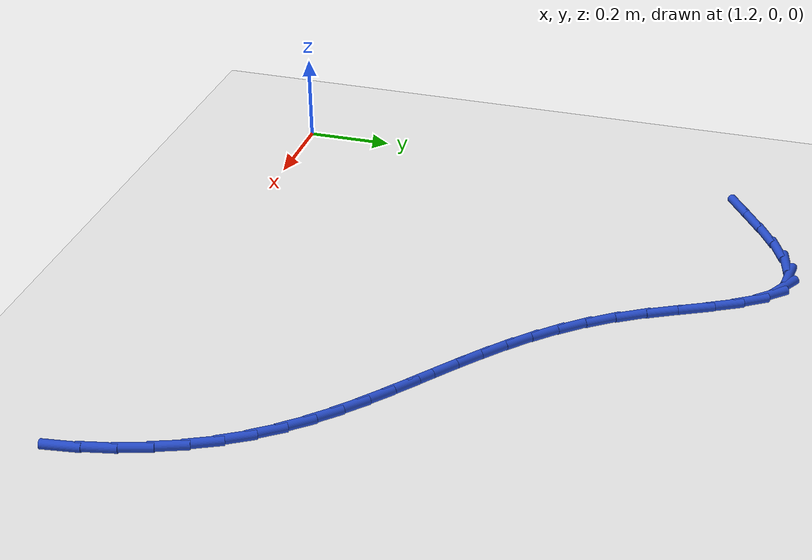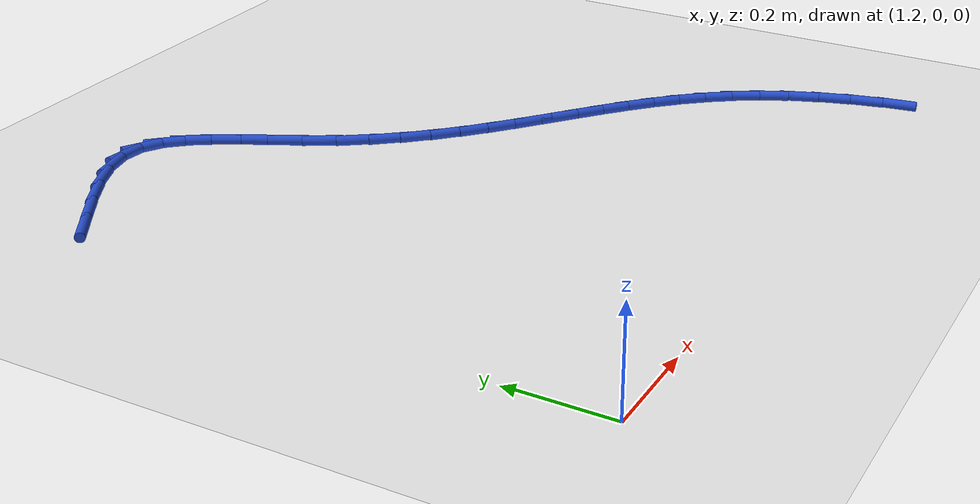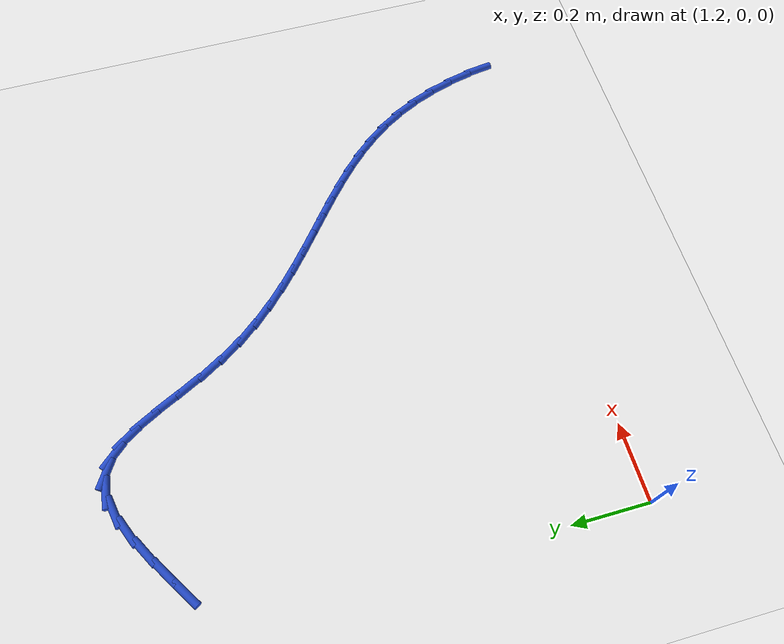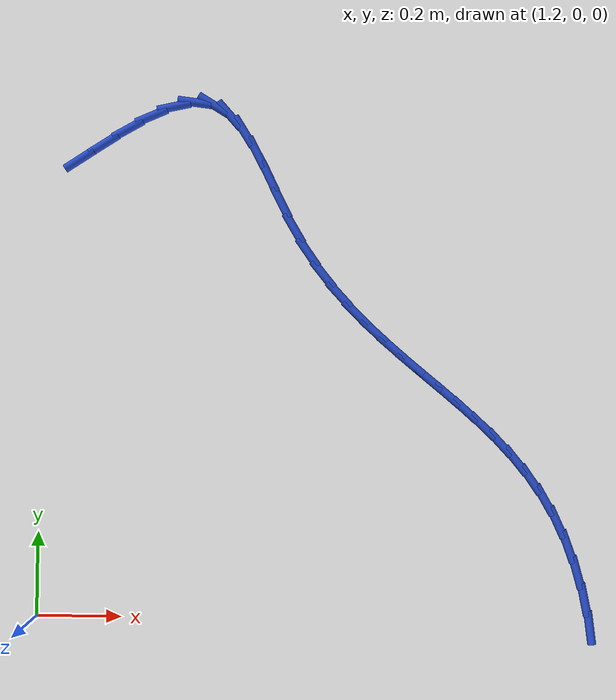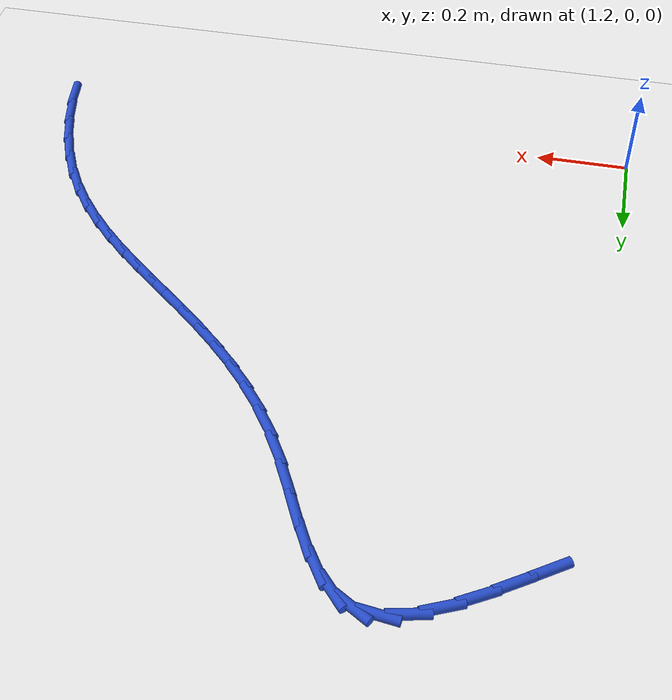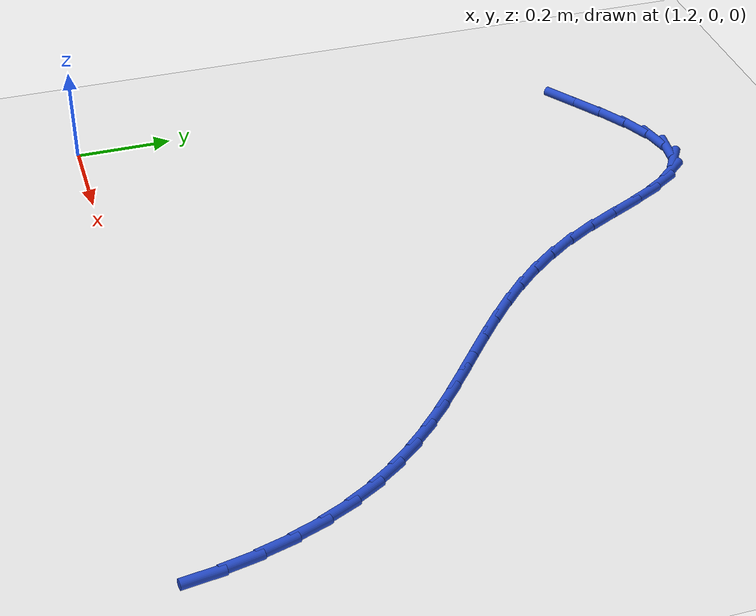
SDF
<sdf version="1.6">
 <world name="default">
  <model name="ground_plane">
   <static>1</static>
   <link name="link">
    <collision name="collision">
     <geometry><plane><normal>0 0 1</normal><size>100 100</size></plane></geometry>
     <surface><friction><ode><mu>100</mu><mu2>50</mu2></ode></friction></surface>
    </collision>
    <visual name="visual">
     <cast_shadows>0</cast_shadows>
     <geometry><plane><normal>0 0 1</normal><size>100 100</size></plane></geometry>
     <material>
      <script><uri>file://media/materials/scripts/gazebo.material</uri><name>Gazebo/WhiteGlow</name></script>
     </material>
    </visual>
   </link>
  </model>
  <model name="line">
   <link name="link_31">
    <pose>1.287530448494559 1.0815637280535448 0.01 0 1.57 0.5828483230879672</pose>
    <collision name="collision">
     <geometry><cylinder><radius>0.01</radius><length>0.08</length></cylinder></geometry>
    </collision>
    <visual name="visual">
     <material>
      <script><name>Gazebo/Blue</name><uri>file://media/materials/scripts/gazebo.material</uri></script>
     </material>
     <geometry><cylinder><radius>0.01</radius><length>0.08</length></cylinder></geometry>
    </visual>
   </link>
   <link name="link_32">
    <pose>1.3444162448766819 1.1190655200527553 0.01 0 1.57 0.5708625782186201</pose>
    <collision name="collision">
     <geometry><cylinder><radius>0.01</radius><length>0.08</length></cylinder></geometry>
    </collision>
    <visual name="visual">
     <material>
      <script><name>Gazebo/Blue</name><uri>file://media/materials/scripts/gazebo.material</uri></script>
     </material>
     <geometry><cylinder><radius>0.01</radius><length>0.08</length></cylinder></geometry>
    </visual>
   </link>
   <link name="link_33">
    <pose>1.401080755542287 1.1554546860199304 0.01 0 1.57 0.5186424423869705</pose>
    <collision name="collision">
     <geometry><cylinder><radius>0.01</radius><length>0.08</length></cylinder></geometry>
    </collision>
    <visual name="visual">
     <material>
      <script><name>Gazebo/Blue</name><uri>file://media/materials/scripts/gazebo.material</uri></script>
     </material>
     <geometry><cylinder><radius>0.01</radius><length>0.08</length></cylinder></geometry>
    </visual>
   </link>
   <link name="link_34">
    <pose>1.4563572141280314 1.187004312206897 0.01 0 1.57 0.4110955468449299</pose>
    <collision name="collision">
     <geometry><cylinder><radius>0.01</radius><length>0.08</length></cylinder></geometry>
    </collision>
    <visual name="visual">
     <material>
      <script><name>Gazebo/Blue</name><uri>file://media/materials/scripts/gazebo.material</uri></script>
     </material>
     <geometry><cylinder><radius>0.01</radius><length>0.08</length></cylinder></geometry>
    </visual>
   </link>
   <link name="link_35">
    <pose>1.5090788542705695 1.2099874848654795 0.01 0 1.57 0.21479366397978478</pose>
    <collision name="collision">
     <geometry><cylinder><radius>0.01</radius><length>0.08</length></cylinder></geometry>
    </collision>
    <visual name="visual">
     <material>
      <script><name>Gazebo/Blue</name><uri>file://media/materials/scripts/gazebo.material</uri></script>
     </material>
     <geometry><cylinder><radius>0.01</radius><length>0.08</length></cylinder></geometry>
    </visual>
   </link>
   <link name="link_36">
    <pose>1.5580789096065581 1.2206772902475034 0.01 0 1.57 -0.12022302800711673</pose>
    <collision name="collision">
     <geometry><cylinder><radius>0.01</radius><length>0.08</length></cylinder></geometry>
    </collision>
    <visual name="visual">
     <material>
      <script><name>Gazebo/Blue</name><uri>file://media/materials/scripts/gazebo.material</uri></script>
     </material>
     <geometry><cylinder><radius>0.01</radius><length>0.08</length></cylinder></geometry>
    </visual>
   </link>
   <link name="link_37">
    <pose>1.6021911159067 1.2153482880807178 0.01 0 1.57 -0.5440250194798918</pose>
    <collision name="collision">
     <geometry><cylinder><radius>0.01</radius><length>0.08</length></cylinder></geometry>
    </collision>
    <visual name="visual">
     <material>
      <script><name>Gazebo/Blue</name><uri>file://media/materials/scripts/gazebo.material</uri></script>
     </material>
     <geometry><cylinder><radius>0.01</radius><length>0.08</length></cylinder></geometry>
    </visual>
   </link>
   <link name="link_38">
    <pose>1.6408287999826638 1.191975805940241 0.01 0 1.57 -0.8429592954730041</pose>
    <collision name="collision">
     <geometry><cylinder><radius>0.01</radius><length>0.08</length></cylinder></geometry>
    </collision>
    <visual name="visual">
     <material>
      <script><name>Gazebo/Blue</name><uri>file://media/materials/scripts/gazebo.material</uri></script>
     </material>
     <geometry><cylinder><radius>0.01</radius><length>0.08</length></cylinder></geometry>
    </visual>
   </link>
   <link name="link_39">
    <pose>1.6751012732324377 1.1535119150880113 0.01 0 1.57 -1.0083850454439198</pose>
    <collision name="collision">
     <geometry><cylinder><radius>0.01</radius><length>0.08</length></cylinder></geometry>
    </collision>
    <visual name="visual">
     <material>
      <script><name>Gazebo/Blue</name><uri>file://media/materials/scripts/gazebo.material</uri></script>
     </material>
     <geometry><cylinder><radius>0.01</radius><length>0.08</length></cylinder></geometry>
    </visual>
   </link>
   <link name="link_40">
    <pose>1.7064264276448216 1.1038141941352524 0.01 0 1.57 -1.089661140819035</pose>
    <collision name="collision">
     <geometry><cylinder><radius>0.01</radius><length>0.08</length></cylinder></geometry>
    </collision>
    <visual name="visual">
     <material>
      <script><name>Gazebo/Blue</name><uri>file://media/materials/scripts/gazebo.material</uri></script>
     </material>
     <geometry><cylinder><radius>0.01</radius><length>0.08</length></cylinder></geometry>
    </visual>
   </link>
   <link name="link_41">
    <pose>1.7362221552086137 1.0467402216931871 0.01 0 1.57 -1.1152632351521965</pose>
    <collision name="collision">
     <geometry><cylinder><radius>0.01</radius><length>0.08</length></cylinder></geometry>
    </collision>
    <visual name="visual">
     <material>
      <script><name>Gazebo/Blue</name><uri>file://media/materials/scripts/gazebo.material</uri></script>
     </material>
     <geometry><cylinder><radius>0.01</radius><length>0.08</length></cylinder></geometry>
    </visual>
   </link>
   <link name="link_42">
    <pose>1.7659063479126142 0.9861475763730376 0.01 0 1.57 -1.095747346816267</pose>
    <collision name="collision">
     <geometry><cylinder><radius>0.01</radius><length>0.08</length></cylinder></geometry>
    </collision>
    <visual name="visual">
     <material>
      <script><name>Gazebo/Blue</name><uri>file://media/materials/scripts/gazebo.material</uri></script>
     </material>
     <geometry><cylinder><radius>0.01</radius><length>0.08</length></cylinder></geometry>
    </visual>
   </link>
   <link name="link_43">
    <pose>1.7968968977456217 0.9258938367860274 0.01 0 1.57 -1.0328941613158986</pose>
    <collision name="collision">
     <geometry><cylinder><radius>0.01</radius><length>0.08</length></cylinder></geometry>
    </collision>
    <visual name="visual">
     <material>
      <script><name>Gazebo/Blue</name><uri>file://media/materials/scripts/gazebo.material</uri></script>
     </material>
     <geometry><cylinder><radius>0.01</radius><length>0.08</length></cylinder></geometry>
    </visual>
   </link>
   <link name="link_44">
    <pose>1.8305006534468056 0.8695666607696565 0.01 0 1.57 -0.9552503152168771</pose>
    <collision name="collision">
     <geometry><cylinder><radius>0.01</radius><length>0.08</length></cylinder></geometry>
    </collision>
    <visual name="visual">
     <material>
      <script><name>Gazebo/Blue</name><uri>file://media/materials/scripts/gazebo.material</uri></script>
     </material>
     <geometry><cylinder><radius>0.01</radius><length>0.08</length></cylinder></geometry>
    </visual>
   </link>
   <link name="link_45">
    <pose>1.8669200424777486 0.8180691103237332 0.01 0 1.57 -0.8837802988849666</pose>
    <collision name="collision">
     <geometry><cylinder><radius>0.01</radius><length>0.08</length></cylinder></geometry>
    </collision>
    <visual name="visual">
     <material>
      <script><name>Gazebo/Blue</name><uri>file://media/materials/scripts/gazebo.material</uri></script>
     </material>
     <geometry><cylinder><radius>0.01</radius><length>0.08</length></cylinder></geometry>
    </visual>
   </link>
   <link name="link_46">
    <pose>1.905724542520255 0.7707656911210917 0.01 0 1.57 -0.8210146240338974</pose>
    <collision name="collision">
     <geometry><cylinder><radius>0.01</radius><length>0.08</length></cylinder></geometry>
    </collision>
    <visual name="visual">
     <material>
      <script><name>Gazebo/Blue</name><uri>file://media/materials/scripts/gazebo.material</uri></script>
     </material>
     <geometry><cylinder><radius>0.01</radius><length>0.08</length></cylinder></geometry>
    </visual>
   </link>
   <link name="link_47">
    <pose>1.946476143060122 0.7270027067406482 0.01 0 1.57 -0.768747121748492</pose>
    <collision name="collision">
     <geometry><cylinder><radius>0.01</radius><length>0.08</length></cylinder></geometry>
    </collision>
    <visual name="visual">
     <material>
      <script><name>Gazebo/Blue</name><uri>file://media/materials/scripts/gazebo.material</uri></script>
     </material>
     <geometry><cylinder><radius>0.01</radius><length>0.08</length></cylinder></geometry>
    </visual>
   </link>
   <link name="link_48">
    <pose>1.9887368335831501 0.6861264607613196 0.01 0 1.57 -0.7282653185635601</pose>
    <collision name="collision">
     <geometry><cylinder><radius>0.01</radius><length>0.08</length></cylinder></geometry>
    </collision>
    <visual name="visual">
     <material>
      <script><name>Gazebo/Blue</name><uri>file://media/materials/scripts/gazebo.material</uri></script>
     </material>
     <geometry><cylinder><radius>0.01</radius><length>0.08</length></cylinder></geometry>
    </visual>
   </link>
   <link name="link_49">
    <pose>2.0320686035751394 0.6474832567620225 0.01 0 1.57 -0.7004360735180659</pose>
    <collision name="collision">
     <geometry><cylinder><radius>0.01</radius><length>0.08</length></cylinder></geometry>
    </collision>
    <visual name="visual">
     <material>
      <script><name>Gazebo/Blue</name><uri>file://media/materials/scripts/gazebo.material</uri></script>
     </material>
     <geometry><cylinder><radius>0.01</radius><length>0.08</length></cylinder></geometry>
    </visual>
   </link>
   <link name="link_50">
    <pose>2.076033442521889 0.6104193983216725 0.01 0 1.57 -0.685829665734115</pose>
    <collision name="collision">
     <geometry><cylinder><radius>0.01</radius><length>0.08</length></cylinder></geometry>
    </collision>
    <visual name="visual">
     <material>
      <script><name>Gazebo/Blue</name><uri>file://media/materials/scripts/gazebo.material</uri></script>
     </material>
     <geometry><cylinder><radius>0.01</radius><length>0.08</length></cylinder></geometry>
    </visual>
   </link>
   <link name="link_51">
    <pose>2.120193339909198 0.5742811890191865 0.01 0 1.57 -0.6848315077864962</pose>
    <collision name="collision">
     <geometry><cylinder><radius>0.01</radius><length>0.08</length></cylinder></geometry>
    </collision>
    <visual name="visual">
     <material>
      <script><name>Gazebo/Blue</name><uri>file://media/materials/scripts/gazebo.material</uri></script>
     </material>
     <geometry><cylinder><radius>0.01</radius><length>0.08</length></cylinder></geometry>
    </visual>
   </link>
   <link name="link_52">
    <pose>2.1641102852228657 0.5384149324334809 0.01 0 1.57 -0.6977067699242523</pose>
    <collision name="collision">
     <geometry><cylinder><radius>0.01</radius><length>0.08</length></cylinder></geometry>
    </collision>
    <visual name="visual">
     <material>
      <script><name>Gazebo/Blue</name><uri>file://media/materials/scripts/gazebo.material</uri></script>
     </material>
     <geometry><cylinder><radius>0.01</radius><length>0.08</length></cylinder></geometry>
    </visual>
   </link>
   <link name="link_53">
    <pose>2.207346267948693 0.5021669321434725 0.01 0 1.57 -0.7245973544513088</pose>
    <collision name="collision">
     <geometry><cylinder><radius>0.01</radius><length>0.08</length></cylinder></geometry>
    </collision>
    <visual name="visual">
     <material>
      <script><name>Gazebo/Blue</name><uri>file://media/materials/scripts/gazebo.material</uri></script>
     </material>
     <geometry><cylinder><radius>0.01</radius><length>0.08</length></cylinder></geometry>
    </visual>
   </link>
   <link name="link_54">
    <pose>2.249463277572479 0.4648834917280772 0.01 0 1.57 -0.765441086318619</pose>
    <collision name="collision">
     <geometry><cylinder><radius>0.01</radius><length>0.08</length></cylinder></geometry>
    </collision>
    <visual name="visual">
     <material>
      <script><name>Gazebo/Blue</name><uri>file://media/materials/scripts/gazebo.material</uri></script>
     </material>
     <geometry><cylinder><radius>0.01</radius><length>0.08</length></cylinder></geometry>
    </visual>
   </link>
   <link name="link_55">
    <pose>2.290023303580023 0.4259109147662116 0.01 0 1.57 -0.8198157492177411</pose>
    <collision name="collision">
     <geometry><cylinder><radius>0.01</radius><length>0.08</length></cylinder></geometry>
    </collision>
    <visual name="visual">
     <material>
      <script><name>Gazebo/Blue</name><uri>file://media/materials/scripts/gazebo.material</uri></script>
     </material>
     <geometry><cylinder><radius>0.01</radius><length>0.08</length></cylinder></geometry>
    </visual>
   </link>
   <link name="link_56">
    <pose>2.3285883354571246 0.3845955048367925 0.01 0 1.57 -0.8867344511346836</pose>
    <collision name="collision">
     <geometry><cylinder><radius>0.01</radius><length>0.08</length></cylinder></geometry>
    </collision>
    <visual name="visual">
     <material>
      <script><name>Gazebo/Blue</name><uri>file://media/materials/scripts/gazebo.material</uri></script>
     </material>
     <geometry><cylinder><radius>0.01</radius><length>0.08</length></cylinder></geometry>
    </visual>
   </link>
   <link name="link_57">
    <pose>2.3647203626895825 0.34028356551873606 0.01 0 1.57 -0.964456664127832</pose>
    <collision name="collision">
     <geometry><cylinder><radius>0.01</radius><length>0.08</length></cylinder></geometry>
    </collision>
    <visual name="visual">
     <material>
      <script><name>Gazebo/Blue</name><uri>file://media/materials/scripts/gazebo.material</uri></script>
     </material>
     <geometry><cylinder><radius>0.01</radius><length>0.08</length></cylinder></geometry>
    </visual>
   </link>
   <link name="link_58">
    <pose>2.3979813747631975 0.29232140039095833 0.01 0 1.57 -1.0504153201392474</pose>
    <collision name="collision">
     <geometry><cylinder><radius>0.01</radius><length>0.08</length></cylinder></geometry>
    </collision>
    <visual name="visual">
     <material>
      <script><name>Gazebo/Blue</name><uri>file://media/materials/scripts/gazebo.material</uri></script>
     </material>
     <geometry><cylinder><radius>0.01</radius><length>0.08</length></cylinder></geometry>
    </visual>
   </link>
   <link name="link_59">
    <pose>2.427933367437875 0.2400553509334087 0.01 0 1.57 -1.1386050839663036</pose>
    <collision name="collision">
     <geometry><cylinder><radius>0.01</radius><length>0.08</length></cylinder></geometry>
    </collision>
    <visual name="visual">
     <material>
      <script><name>Gazebo/Blue</name><uri>file://media/materials/scripts/gazebo.material</uri></script>
     </material>
     <geometry><cylinder><radius>0.01</radius><length>0.08</length></cylinder></geometry>
    </visual>
   </link>
   <link name="link_60">
    <pose>2.454188749974698 0.18313629980369275 0.01 0 1.57 -1.2190507228506684</pose>
    <collision name="collision">
     <geometry><cylinder><radius>0.01</radius><length>0.08</length></cylinder></geometry>
    </collision>
    <visual name="visual">
     <material>
      <script><name>Gazebo/Blue</name><uri>file://media/materials/scripts/gazebo.material</uri></script>
     </material>
     <geometry><cylinder><radius>0.01</radius><length>0.08</length></cylinder></geometry>
    </visual>
   </link>
   <link name="link_61">
    <pose>2.4765322575859554 0.12225612754482365 0.01 0 1.57 -1.2926665856373258</pose>
    <collision name="collision">
     <geometry><cylinder><radius>0.01</radius><length>0.08</length></cylinder></geometry>
    </collision>
    <visual name="visual">
     <material>
      <script><name>Gazebo/Blue</name><uri>file://media/materials/scripts/gazebo.material</uri></script>
     </material>
     <geometry><cylinder><radius>0.01</radius><length>0.08</length></cylinder></geometry>
    </visual>
   </link>
   <link name="link_62">
    <pose>2.49478541516307 0.05832895620154168 0.01 0 1.57 -1.3621848945230868</pose>
    <collision name="collision">
     <geometry><cylinder><radius>0.01</radius><length>0.08</length></cylinder></geometry>
    </collision>
    <visual name="visual">
     <material>
      <script><name>Gazebo/Blue</name><uri>file://media/materials/scripts/gazebo.material</uri></script>
     </material>
     <geometry><cylinder><radius>0.01</radius><length>0.08</length></cylinder></geometry>
    </visual>
   </link>
   <link name="link_63">
    <pose>2.508769747597465 -0.007731092181411956 0.01 0 1.57 -1.4299806252828142</pose>
    <collision name="collision">
     <geometry><cylinder><radius>0.01</radius><length>0.08</length></cylinder></geometry>
    </collision>
    <visual name="visual">
     <material>
      <script><name>Gazebo/Blue</name><uri>file://media/materials/scripts/gazebo.material</uri></script>
     </material>
     <geometry><cylinder><radius>0.01</radius><length>0.08</length></cylinder></geometry>
    </visual>
   </link>
  </model>
 </world>
</sdf>
